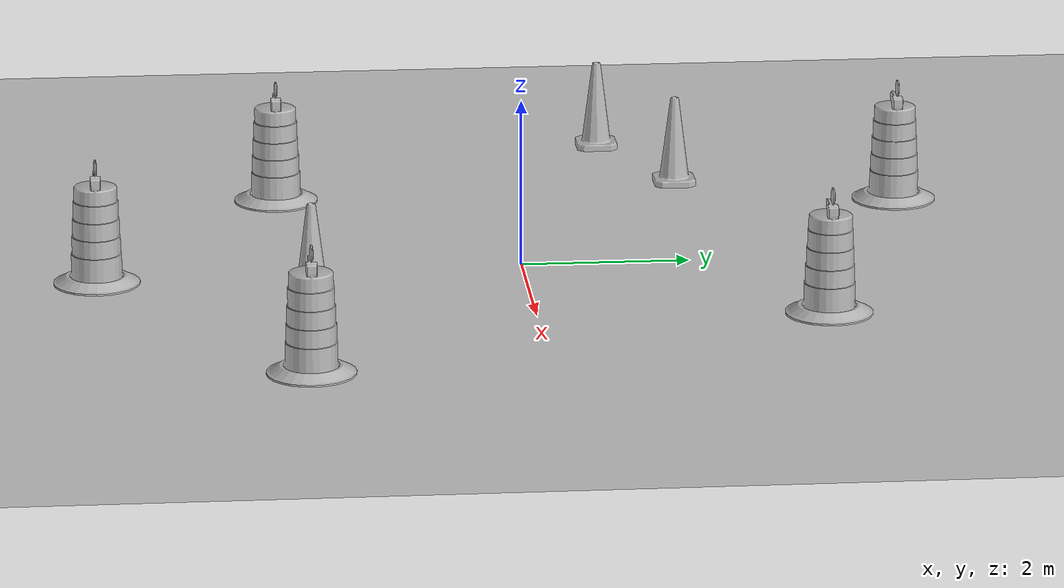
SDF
<sdf version="1.7">
 <world name="default">
  <light name="sun" type="directional">
   <pose>0 0 10 0 -0 0</pose>
   <diffuse>0.8 0.8 0.8 1</diffuse>
   <specular>0.2 0.2 0.2 1</specular>
   <attenuation>
    <range>1000</range>
    <constant>0.9</constant>
    <linear>0.01</linear>
    <quadratic>0.001</quadratic>
   </attenuation>
   <direction>-0.5 0.1 -0.9</direction>
   <spot><inner_angle>0</inner_angle><outer_angle>0</outer_angle><falloff>0</falloff></spot>
  </light>
  <model name="ground_plane">
   <static>1</static>
   <link name="link">
    <collision name="collision">
     <geometry><plane><normal>0 0 1</normal><size>100 100</size></plane></geometry>
     <surface>
      <contact><collide_bitmask>65535</collide_bitmask></contact>
      <friction><ode><mu>100</mu><mu2>50</mu2></ode></friction>
     </surface>
    </collision>
    <visual name="visual">
     <cast_shadows>0</cast_shadows>
     <geometry><plane><normal>0 0 1</normal><size>100 100</size></plane></geometry>
     <material>
      <script><uri>file://media/materials/scripts/gazebo.material</uri><name>Gazebo/Grey</name></script>
     </material>
    </visual>
   </link>
  </model>
  <gravity>0 0 -9.8</gravity>
  <magnetic_field>6e-06 2.3e-05 -4.2e-05</magnetic_field>
  <atmosphere type="adiabatic"/>
  <physics type="ode">
   <max_step_size>0.001</max_step_size>
   <real_time_factor>1</real_time_factor>
   <real_time_update_rate>1000</real_time_update_rate>
  </physics>
  <scene><ambient>0.4 0.4 0.4 1</ambient><background>0.7 0.7 0.7 1</background><shadows>1</shadows></scene>
  <audio><device>default</device></audio>
  <spherical_coordinates>
   <surface_model>EARTH_WGS84</surface_model>
   <latitude_deg>0</latitude_deg>
   <longitude_deg>0</longitude_deg>
   <elevation>0</elevation>
   <heading_deg>0</heading_deg>
  </spherical_coordinates>
  <model name="Construction Cone">
   <link name="link">
    <collision name="collision">
     <geometry>
      <mesh><scale>10 10 10</scale><uri>model://construction_cone/meshes/construction_cone.dae</uri></mesh>
     </geometry>
    </collision>
    <visual name="visual">
     <geometry>
      <mesh><scale>10 10 10</scale><uri>model://construction_cone/meshes/construction_cone.dae</uri></mesh>
     </geometry>
    </visual>
    <inertial>
     <inertia><ixx>1</ixx><ixy>0</ixy><ixz>0</ixz><iyy>1</iyy><iyz>0</iyz><izz>1</izz></inertia>
     <mass>1</mass>
    </inertial>
   </link>
   <pose>-4.99154 1.40769 -0 0 -1e-06 0</pose>
  </model>
  <model name="Construction Barrel">
   <link name="link">
    <inertial>
     <pose>0 0 0.4 0 -0 0</pose>
     <mass>500</mass>
     <inertia><ixx>51.2096</ixx><iyy>51.2096</iyy><izz>25</izz><ixy>0</ixy><ixz>0</ixz><iyz>0</iyz></inertia>
    </inertial>
    <collision name="collision">
     <geometry><mesh><uri>model://construction_barrel/meshes/construction_barrel.dae</uri></mesh></geometry>
    </collision>
    <visual name="visual">
     <geometry><mesh><uri>model://construction_barrel/meshes/construction_barrel.dae</uri></mesh></geometry>
    </visual>
   </link>
   <pose>-2.91963 -2.74847 -5e-06 -7e-06 -1e-05 -1.5e-05</pose>
  </model>
  <model name="Construction Cone_0">
   <link name="link">
    <collision name="collision">
     <geometry>
      <mesh><scale>10 10 10</scale><uri>model://construction_cone/meshes/construction_cone.dae</uri></mesh>
     </geometry>
    </collision>
    <visual name="visual">
     <geometry>
      <mesh><scale>10 10 10</scale><uri>model://construction_cone/meshes/construction_cone.dae</uri></mesh>
     </geometry>
    </visual>
    <inertial>
     <inertia><ixx>1</ixx><ixy>0</ixy><ixz>0</ixz><iyy>1</iyy><iyz>0</iyz><izz>1</izz></inertia>
     <mass>1</mass>
    </inertial>
   </link>
   <pose>0.921156 -2.53304 -1e-05 0 -0 0</pose>
  </model>
  <model name="Construction Cone_1">
   <link name="link">
    <collision name="collision">
     <geometry>
      <mesh><scale>10 10 10</scale><uri>model://construction_cone/meshes/construction_cone.dae</uri></mesh>
     </geometry>
    </collision>
    <visual name="visual">
     <geometry>
      <mesh><scale>10 10 10</scale><uri>model://construction_cone/meshes/construction_cone.dae</uri></mesh>
     </geometry>
    </visual>
    <inertial>
     <inertia><ixx>1</ixx><ixy>0</ixy><ixz>0</ixz><iyy>1</iyy><iyz>0</iyz><izz>1</izz></inertia>
     <mass>1</mass>
    </inertial>
   </link>
   <pose>-3.27632 2.19997 -0 0 -1e-06 0</pose>
  </model>
  <model name="Construction Barrel_0">
   <link name="link">
    <inertial>
     <pose>0 0 0.4 0 -0 0</pose>
     <mass>500</mass>
     <inertia><ixx>51.2096</ixx><iyy>51.2096</iyy><izz>25</izz><ixy>0</ixy><ixz>0</ixz><iyz>0</iyz></inertia>
    </inertial>
    <collision name="collision">
     <geometry><mesh><uri>model://construction_barrel/meshes/construction_barrel.dae</uri></mesh></geometry>
    </collision>
    <visual name="visual">
     <geometry><mesh><uri>model://construction_barrel/meshes/construction_barrel.dae</uri></mesh></geometry>
    </visual>
   </link>
   <pose>3.89912 -2.70803 0 0 0 -9e-06</pose>
  </model>
  <model name="Construction Barrel_1">
   <link name="link">
    <inertial>
     <pose>0 0 0.4 0 -0 0</pose>
     <mass>500</mass>
     <inertia><ixx>51.2096</ixx><iyy>51.2096</iyy><izz>25</izz><ixy>0</ixy><ixz>0</ixz><iyz>0</iyz></inertia>
    </inertial>
    <collision name="collision">
     <geometry><mesh><uri>model://construction_barrel/meshes/construction_barrel.dae</uri></mesh></geometry>
    </collision>
    <visual name="visual">
     <geometry><mesh><uri>model://construction_barrel/meshes/construction_barrel.dae</uri></mesh></geometry>
    </visual>
   </link>
   <pose>0.300943 -5.01663 0 -0 1e-06 -8e-06</pose>
  </model>
  <model name="Construction Barrel_2">
   <link name="link">
    <inertial>
     <pose>0 0 0.4 0 -0 0</pose>
     <mass>500</mass>
     <inertia><ixx>51.2096</ixx><iyy>51.2096</iyy><izz>25</izz><ixy>0</ixy><ixz>0</ixz><iyz>0</iyz></inertia>
    </inertial>
    <collision name="collision">
     <geometry><mesh><uri>model://construction_barrel/meshes/construction_barrel.dae</uri></mesh></geometry>
    </collision>
    <visual name="visual">
     <geometry><mesh><uri>model://construction_barrel/meshes/construction_barrel.dae</uri></mesh></geometry>
    </visual>
   </link>
   <pose>-2.3393 4.79816 0 0 -0 -7e-06</pose>
  </model>
  <model name="Construction Barrel_3">
   <link name="link">
    <inertial>
     <pose>0 0 0.4 0 -0 0</pose>
     <mass>500</mass>
     <inertia><ixx>51.2096</ixx><iyy>51.2096</iyy><izz>25</izz><ixy>0</ixy><ixz>0</ixz><iyz>0</iyz></inertia>
    </inertial>
    <collision name="collision">
     <geometry><mesh><uri>model://construction_barrel/meshes/construction_barrel.dae</uri></mesh></geometry>
    </collision>
    <visual name="visual">
     <geometry><mesh><uri>model://construction_barrel/meshes/construction_barrel.dae</uri></mesh></geometry>
    </visual>
   </link>
   <pose>2.19079 3.366 -0 0 -0 -4e-06</pose>
  </model>
 </world>
</sdf>
